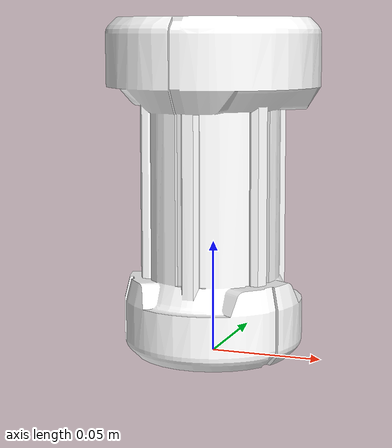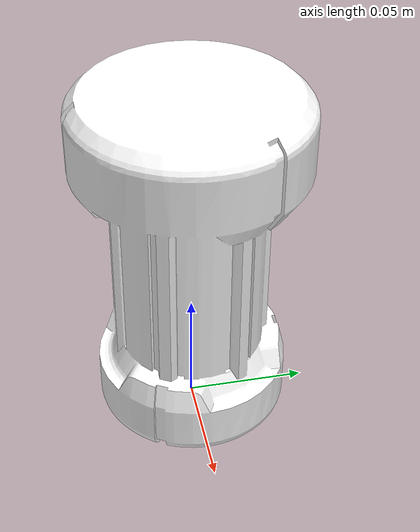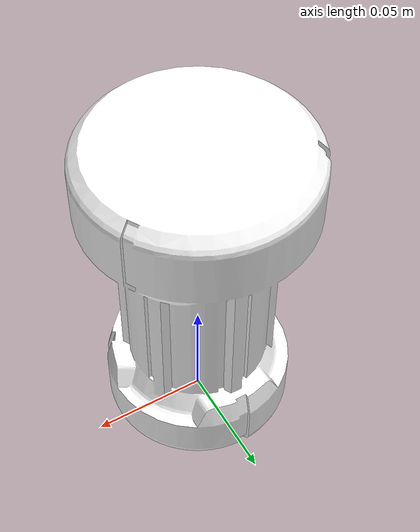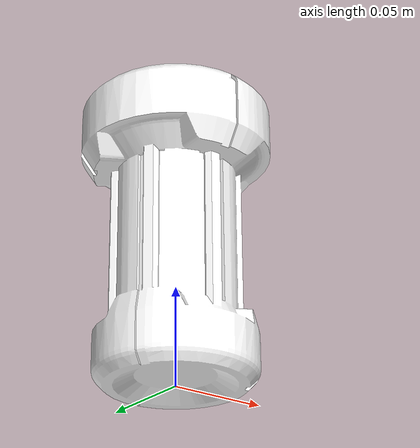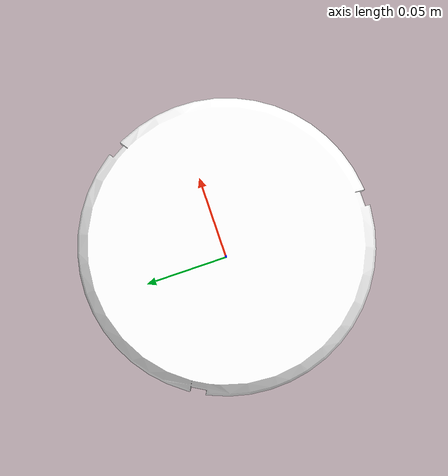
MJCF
<mujoco model="Energy_Unit.SLDASM">
    <compiler angle="radian" />
    <size njmax="500" nconmax="100" />
    <asset>
        <mesh name="base_link" file="model/field_assets/Energy_Unit.STL" />
    </asset>
    <worldbody>
        <geom type="mesh" contype="0" conaffinity="0" group="1" rgba="1 1 1 1" mesh="base_link" />
        <geom type="mesh" rgba="1 1 1 1" mesh="base_link" />
    </worldbody>
</mujoco>
